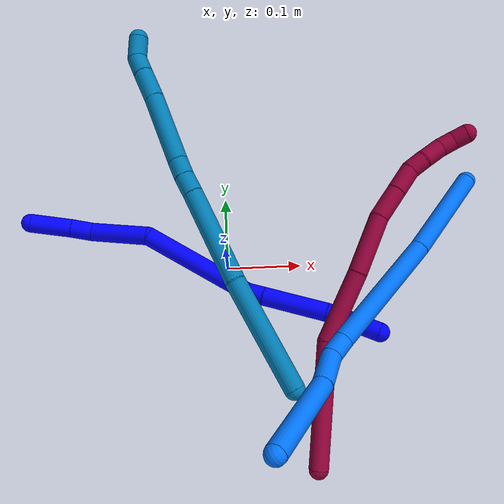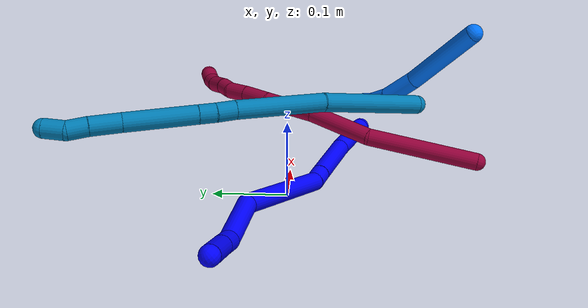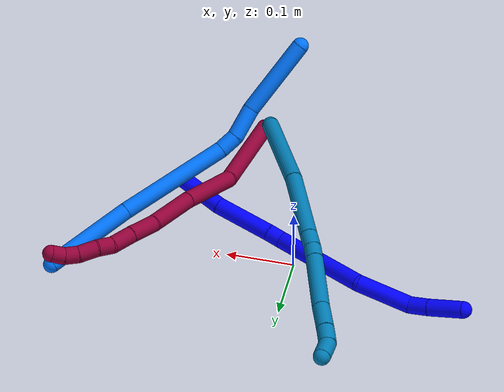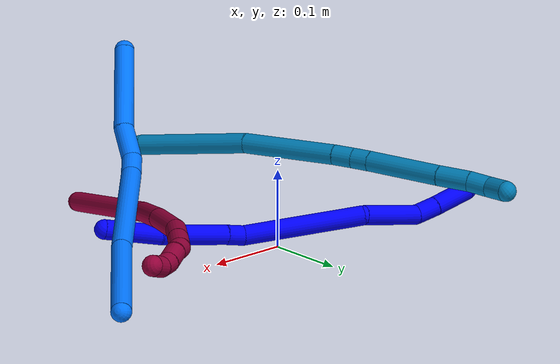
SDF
<sdf version="1.7">
 <world name="default">
  <model name="1">
   <static>0</static>
   <link name="1">
    <collision name="collision-cylinder-e_1_1_4">
     <pose>-0.035044 -0.00153 -0.009193 2.97664 -1.31087 -2.92738</pose>
     <geometry><cylinder><radius>0.0125</radius><length>0.072525</length></cylinder></geometry>
     <surface>
      <friction><ode><mu>1.16</mu><mu2>1.16</mu2><slip1>0</slip1><slip2>0</slip2></ode></friction>
      <contact><ode><kp>1e+06</kp><kd>1</kd><max_vel>0</max_vel><min_depth>0.001</min_depth></ode></contact>
     </surface>
    </collision>
    <visual name="visual-cylinder-e_1_1_4">
     <pose>-0.035044 -0.00153 -0.009193 2.97664 -1.31087 -2.92738</pose>
     <geometry><cylinder><radius>0.0125</radius><length>0.072525</length></cylinder></geometry>
     <material><ambient>0 0 1 1</ambient></material>
    </visual>
    <collision name="collision-cylinder-e_2_4_5">
     <pose>-0.111961 0.001155 -0.02967 -2.784 -1.29071 2.67043</pose>
     <geometry><cylinder><radius>0.0125</radius><length>0.087141</length></cylinder></geometry>
     <surface>
      <friction><ode><mu>1.16</mu><mu2>1.16</mu2><slip1>0</slip1><slip2>0</slip2></ode></friction>
      <contact><ode><kp>1e+06</kp><kd>1</kd><max_vel>0</max_vel><min_depth>0.001</min_depth></ode></contact>
     </surface>
    </collision>
    <visual name="visual-cylinder-e_2_4_5">
     <pose>-0.111961 0.001155 -0.02967 -2.784 -1.29071 2.67043</pose>
     <geometry><cylinder><radius>0.0125</radius><length>0.087141</length></cylinder></geometry>
     <material><ambient>0 0 1 1</ambient></material>
    </visual>
    <collision name="collision-cylinder-e_3_5_6">
     <pose>-0.165104 0.006211 -0.043546 -2.82829 -1.33344 2.74544</pose>
     <geometry><cylinder><radius>0.0125</radius><length>0.02319</length></cylinder></geometry>
     <surface>
      <friction><ode><mu>1.16</mu><mu2>1.16</mu2><slip1>0</slip1><slip2>0</slip2></ode></friction>
      <contact><ode><kp>1e+06</kp><kd>1</kd><max_vel>0</max_vel><min_depth>0.001</min_depth></ode></contact>
     </surface>
    </collision>
    <visual name="visual-cylinder-e_3_5_6">
     <pose>-0.165104 0.006211 -0.043546 -2.82829 -1.33344 2.74544</pose>
     <geometry><cylinder><radius>0.0125</radius><length>0.02319</length></cylinder></geometry>
     <material><ambient>0 0 1 1</ambient></material>
    </visual>
    <collision name="collision-cylinder-e_4_6_7">
     <pose>-0.241044 0.006385 -0.087915 3.12565 -0.997198 -3.11231</pose>
     <geometry><cylinder><radius>0.0125</radius><length>0.153986</length></cylinder></geometry>
     <surface>
      <friction><ode><mu>1.16</mu><mu2>1.16</mu2><slip1>0</slip1><slip2>0</slip2></ode></friction>
      <contact><ode><kp>1e+06</kp><kd>1</kd><max_vel>0</max_vel><min_depth>0.001</min_depth></ode></contact>
     </surface>
    </collision>
    <visual name="visual-cylinder-e_4_6_7">
     <pose>-0.241044 0.006385 -0.087915 3.12565 -0.997198 -3.11231</pose>
     <geometry><cylinder><radius>0.0125</radius><length>0.153986</length></cylinder></geometry>
     <material><ambient>0 0 1 1</ambient></material>
    </visual>
    <collision name="collision-cylinder-e_5_7_8">
     <pose>-0.344613 0.014561 -0.136044 -2.19385 -1.29787 1.95257</pose>
     <geometry><cylinder><radius>0.0125</radius><length>0.080786</length></cylinder></geometry>
     <surface>
      <friction><ode><mu>1.16</mu><mu2>1.16</mu2><slip1>0</slip1><slip2>0</slip2></ode></friction>
      <contact><ode><kp>1e+06</kp><kd>1</kd><max_vel>0</max_vel><min_depth>0.001</min_depth></ode></contact>
     </surface>
    </collision>
    <visual name="visual-cylinder-e_5_7_8">
     <pose>-0.344613 0.014561 -0.136044 -2.19385 -1.29787 1.95257</pose>
     <geometry><cylinder><radius>0.0125</radius><length>0.080786</length></cylinder></geometry>
     <material><ambient>0 0 1 1</ambient></material>
    </visual>
    <collision name="collision-cylinder-e_6_8_9">
     <pose>-0.395558 0.028862 -0.149244 -2.46849 -0.942297 1.93798</pose>
     <geometry><cylinder><radius>0.0125</radius><length>0.029787</length></cylinder></geometry>
     <surface>
      <friction><ode><mu>1.16</mu><mu2>1.16</mu2><slip1>0</slip1><slip2>0</slip2></ode></friction>
      <contact><ode><kp>1e+06</kp><kd>1</kd><max_vel>0</max_vel><min_depth>0.001</min_depth></ode></contact>
     </surface>
    </collision>
    <visual name="visual-cylinder-e_6_8_9">
     <pose>-0.395558 0.028862 -0.149244 -2.46849 -0.942297 1.93798</pose>
     <geometry><cylinder><radius>0.0125</radius><length>0.029787</length></cylinder></geometry>
     <material><ambient>0 0 1 1</ambient></material>
    </visual>
    <collision name="collision-cylinder-e_7_9_2">
     <pose>-0.428262 0.045408 -0.167995 -2.39171 -0.903697 1.77889</pose>
     <geometry><cylinder><radius>0.0125</radius><length>0.052585</length></cylinder></geometry>
     <surface>
      <friction><ode><mu>1.16</mu><mu2>1.16</mu2><slip1>0</slip1><slip2>0</slip2></ode></friction>
      <contact><ode><kp>1e+06</kp><kd>1</kd><max_vel>0</max_vel><min_depth>0.001</min_depth></ode></contact>
     </surface>
    </collision>
    <visual name="visual-cylinder-e_7_9_2">
     <pose>-0.428262 0.045408 -0.167995 -2.39171 -0.903697 1.77889</pose>
     <geometry><cylinder><radius>0.0125</radius><length>0.052585</length></cylinder></geometry>
     <material><ambient>0 0 1 1</ambient></material>
    </visual>
    <collision name="collision-sphere-2">
     <pose>-0.448917 0.056495 -0.179899 0 -0 0</pose>
     <geometry><sphere><radius>0.0125</radius></sphere></geometry>
     <surface>
      <friction><ode><mu>1.16</mu><mu2>1.16</mu2><slip1>0</slip1><slip2>0</slip2></ode></friction>
      <contact><ode><kp>1e+06</kp><kd>1</kd><max_vel>0</max_vel><min_depth>0.001</min_depth></ode></contact>
     </surface>
    </collision>
    <visual name="visual-sphere-2">
     <pose>-0.448917 0.056495 -0.179899 0 -0 0</pose>
     <geometry><sphere><radius>0.0125</radius></sphere></geometry>
     <material><ambient>0 0 1 1</ambient></material>
    </visual>
    <collision name="collision-sphere-9">
     <pose>-0.407606 0.034321 -0.156091 0 -0 0</pose>
     <geometry><sphere><radius>0.0125</radius></sphere></geometry>
     <surface>
      <friction><ode><mu>1.16</mu><mu2>1.16</mu2><slip1>0</slip1><slip2>0</slip2></ode></friction>
      <contact><ode><kp>1e+06</kp><kd>1</kd><max_vel>0</max_vel><min_depth>0.001</min_depth></ode></contact>
     </surface>
    </collision>
    <visual name="visual-sphere-9">
     <pose>-0.407606 0.034321 -0.156091 0 -0 0</pose>
     <geometry><sphere><radius>0.0125</radius></sphere></geometry>
     <material><ambient>0 0 1 1</ambient></material>
    </visual>
    <collision name="collision-sphere-4">
     <pose>-0.070089 -0.003061 -0.018387 0 -0 0</pose>
     <geometry><sphere><radius>0.0125</radius></sphere></geometry>
     <surface>
      <friction><ode><mu>1.16</mu><mu2>1.16</mu2><slip1>0</slip1><slip2>0</slip2></ode></friction>
      <contact><ode><kp>1e+06</kp><kd>1</kd><max_vel>0</max_vel><min_depth>0.001</min_depth></ode></contact>
     </surface>
    </collision>
    <visual name="visual-sphere-4">
     <pose>-0.070089 -0.003061 -0.018387 0 -0 0</pose>
     <geometry><sphere><radius>0.0125</radius></sphere></geometry>
     <material><ambient>0 0 1 1</ambient></material>
    </visual>
    <collision name="collision-sphere-1">
     <geometry><sphere><radius>0.0125</radius></sphere></geometry>
     <surface>
      <friction><ode><mu>1.16</mu><mu2>1.16</mu2><slip1>0</slip1><slip2>0</slip2></ode></friction>
      <contact><ode><kp>1e+06</kp><kd>1</kd><max_vel>0</max_vel><min_depth>0.001</min_depth></ode></contact>
     </surface>
    </collision>
    <visual name="visual-sphere-1">
     <geometry><sphere><radius>0.0125</radius></sphere></geometry>
     <material><ambient>0 0 1 1</ambient></material>
    </visual>
    <collision name="collision-sphere-8">
     <pose>-0.383511 0.023404 -0.142398 0 -0 0</pose>
     <geometry><sphere><radius>0.0125</radius></sphere></geometry>
     <surface>
      <friction><ode><mu>1.16</mu><mu2>1.16</mu2><slip1>0</slip1><slip2>0</slip2></ode></friction>
      <contact><ode><kp>1e+06</kp><kd>1</kd><max_vel>0</max_vel><min_depth>0.001</min_depth></ode></contact>
     </surface>
    </collision>
    <visual name="visual-sphere-8">
     <pose>-0.383511 0.023404 -0.142398 0 -0 0</pose>
     <geometry><sphere><radius>0.0125</radius></sphere></geometry>
     <material><ambient>0 0 1 1</ambient></material>
    </visual>
    <collision name="collision-sphere-5">
     <pose>-0.153833 0.005371 -0.040952 0 -0 0</pose>
     <geometry><sphere><radius>0.0125</radius></sphere></geometry>
     <surface>
      <friction><ode><mu>1.16</mu><mu2>1.16</mu2><slip1>0</slip1><slip2>0</slip2></ode></friction>
      <contact><ode><kp>1e+06</kp><kd>1</kd><max_vel>0</max_vel><min_depth>0.001</min_depth></ode></contact>
     </surface>
    </collision>
    <visual name="visual-sphere-5">
     <pose>-0.153833 0.005371 -0.040952 0 -0 0</pose>
     <geometry><sphere><radius>0.0125</radius></sphere></geometry>
     <material><ambient>0 0 1 1</ambient></material>
    </visual>
    <collision name="collision-sphere-6">
     <pose>-0.176374 0.007052 -0.04614 0 -0 0</pose>
     <geometry><sphere><radius>0.0125</radius></sphere></geometry>
     <surface>
      <friction><ode><mu>1.16</mu><mu2>1.16</mu2><slip1>0</slip1><slip2>0</slip2></ode></friction>
      <contact><ode><kp>1e+06</kp><kd>1</kd><max_vel>0</max_vel><min_depth>0.001</min_depth></ode></contact>
     </surface>
    </collision>
    <visual name="visual-sphere-6">
     <pose>-0.176374 0.007052 -0.04614 0 -0 0</pose>
     <geometry><sphere><radius>0.0125</radius></sphere></geometry>
     <material><ambient>0 0 1 1</ambient></material>
    </visual>
    <collision name="collision-sphere-7">
     <pose>-0.305715 0.005719 -0.129691 0 -0 0</pose>
     <geometry><sphere><radius>0.0125</radius></sphere></geometry>
     <surface>
      <friction><ode><mu>1.16</mu><mu2>1.16</mu2><slip1>0</slip1><slip2>0</slip2></ode></friction>
      <contact><ode><kp>1e+06</kp><kd>1</kd><max_vel>0</max_vel><min_depth>0.001</min_depth></ode></contact>
     </surface>
    </collision>
    <visual name="visual-sphere-7">
     <pose>-0.305715 0.005719 -0.129691 0 -0 0</pose>
     <geometry><sphere><radius>0.0125</radius></sphere></geometry>
     <material><ambient>0 0 1 1</ambient></material>
    </visual>
    <inertial>
     <pose>-0.230773 0.011082 -0.084139 0 -0 0</pose>
     <mass>0.5</mass>
     <inertia>
      <ixx>-0.000211</ixx>
      <ixy>0</ixy>
      <ixz>0</ixz>
      <iyy>0.000488</iyy>
      <iyz>0</iyz>
      <izz>0.000378</izz>
     </inertia>
    </inertial>
   </link>
   <pose>0.1925 -0.102468 0.040972 2.69759 -0.410841 -0.30313</pose>
  </model>
  <model name="8">
   <static>0</static>
   <link name="8">
    <collision name="collision-cylinder-e_1_1_4">
     <pose>0.007077 0.024344 0.074863 -0.314392 0.089652 -0.014219</pose>
     <geometry><cylinder><radius>0.0125</radius><length>0.158078</length></cylinder></geometry>
     <surface>
      <friction><ode><mu>1.16</mu><mu2>1.16</mu2><slip1>0</slip1><slip2>0</slip2></ode></friction>
      <contact><ode><kp>1e+06</kp><kd>1</kd><max_vel>0</max_vel><min_depth>0.001</min_depth></ode></contact>
     </surface>
    </collision>
    <visual name="visual-cylinder-e_1_1_4">
     <pose>0.007077 0.024344 0.074863 -0.314392 0.089652 -0.014219</pose>
     <geometry><cylinder><radius>0.0125</radius><length>0.158078</length></cylinder></geometry>
     <material><ambient>0.584314 0 0.227451 1</ambient></material>
    </visual>
    <collision name="collision-cylinder-e_2_4_5">
     <pose>0.033238 0.068237 0.18861 -0.465853 0.413268 -0.099378</pose>
     <geometry><cylinder><radius>0.0125</radius><length>0.095045</length></cylinder></geometry>
     <surface>
      <friction><ode><mu>1.16</mu><mu2>1.16</mu2><slip1>0</slip1><slip2>0</slip2></ode></friction>
      <contact><ode><kp>1e+06</kp><kd>1</kd><max_vel>0</max_vel><min_depth>0.001</min_depth></ode></contact>
     </surface>
    </collision>
    <visual name="visual-cylinder-e_2_4_5">
     <pose>0.033238 0.068237 0.18861 -0.465853 0.413268 -0.099378</pose>
     <geometry><cylinder><radius>0.0125</radius><length>0.095045</length></cylinder></geometry>
     <material><ambient>0.584314 0 0.227451 1</ambient></material>
    </visual>
    <collision name="collision-cylinder-e_3_5_6">
     <pose>0.064688 0.106033 0.259304 -0.520787 0.325191 -0.087361</pose>
     <geometry><cylinder><radius>0.0125</radius><length>0.0774</length></cylinder></geometry>
     <surface>
      <friction><ode><mu>1.16</mu><mu2>1.16</mu2><slip1>0</slip1><slip2>0</slip2></ode></friction>
      <contact><ode><kp>1e+06</kp><kd>1</kd><max_vel>0</max_vel><min_depth>0.001</min_depth></ode></contact>
     </surface>
    </collision>
    <visual name="visual-cylinder-e_3_5_6">
     <pose>0.064688 0.106033 0.259304 -0.520787 0.325191 -0.087361</pose>
     <geometry><cylinder><radius>0.0125</radius><length>0.0774</length></cylinder></geometry>
     <material><ambient>0.584314 0 0.227451 1</ambient></material>
    </visual>
    <collision name="collision-cylinder-e_4_6_7">
     <pose>0.086446 0.136632 0.305653 -0.704292 0.457572 -0.170721</pose>
     <geometry><cylinder><radius>0.0125</radius><length>0.04253</length></cylinder></geometry>
     <surface>
      <friction><ode><mu>1.16</mu><mu2>1.16</mu2><slip1>0</slip1><slip2>0</slip2></ode></friction>
      <contact><ode><kp>1e+06</kp><kd>1</kd><max_vel>0</max_vel><min_depth>0.001</min_depth></ode></contact>
     </surface>
    </collision>
    <visual name="visual-cylinder-e_4_6_7">
     <pose>0.086446 0.136632 0.305653 -0.704292 0.457572 -0.170721</pose>
     <geometry><cylinder><radius>0.0125</radius><length>0.04253</length></cylinder></geometry>
     <material><ambient>0.584314 0 0.227451 1</ambient></material>
    </visual>
    <collision name="collision-cylinder-e_5_7_8">
     <pose>0.102808 0.159768 0.331574 -0.75838 0.418166 -0.168698</pose>
     <geometry><cylinder><radius>0.0125</radius><length>0.034318</length></cylinder></geometry>
     <surface>
      <friction><ode><mu>1.16</mu><mu2>1.16</mu2><slip1>0</slip1><slip2>0</slip2></ode></friction>
      <contact><ode><kp>1e+06</kp><kd>1</kd><max_vel>0</max_vel><min_depth>0.001</min_depth></ode></contact>
     </surface>
    </collision>
    <visual name="visual-cylinder-e_5_7_8">
     <pose>0.102808 0.159768 0.331574 -0.75838 0.418166 -0.168698</pose>
     <geometry><cylinder><radius>0.0125</radius><length>0.034318</length></cylinder></geometry>
     <material><ambient>0.584314 0 0.227451 1</ambient></material>
    </visual>
    <collision name="collision-cylinder-e_6_8_9">
     <pose>0.117373 0.177361 0.348134 -0.920694 0.726224 -0.372463</pose>
     <geometry><cylinder><radius>0.0125</radius><length>0.02288</length></cylinder></geometry>
     <surface>
      <friction><ode><mu>1.16</mu><mu2>1.16</mu2><slip1>0</slip1><slip2>0</slip2></ode></friction>
      <contact><ode><kp>1e+06</kp><kd>1</kd><max_vel>0</max_vel><min_depth>0.001</min_depth></ode></contact>
     </surface>
    </collision>
    <visual name="visual-cylinder-e_6_8_9">
     <pose>0.117373 0.177361 0.348134 -0.920694 0.726224 -0.372463</pose>
     <geometry><cylinder><radius>0.0125</radius><length>0.02288</length></cylinder></geometry>
     <material><ambient>0.584314 0 0.227451 1</ambient></material>
    </visual>
    <collision name="collision-cylinder-e_7_9_10">
     <pose>0.133153 0.194857 0.358894 -1.0894 0.596296 -0.368141</pose>
     <geometry><cylinder><radius>0.0125</radius><length>0.029145</length></cylinder></geometry>
     <surface>
      <friction><ode><mu>1.16</mu><mu2>1.16</mu2><slip1>0</slip1><slip2>0</slip2></ode></friction>
      <contact><ode><kp>1e+06</kp><kd>1</kd><max_vel>0</max_vel><min_depth>0.001</min_depth></ode></contact>
     </surface>
    </collision>
    <visual name="visual-cylinder-e_7_9_10">
     <pose>0.133153 0.194857 0.358894 -1.0894 0.596296 -0.368141</pose>
     <geometry><cylinder><radius>0.0125</radius><length>0.029145</length></cylinder></geometry>
     <material><ambient>0.584314 0 0.227451 1</ambient></material>
    </visual>
    <collision name="collision-cylinder-e_8_10_11">
     <pose>0.148805 0.211865 0.367686 -1.10103 0.811454 -0.515604</pose>
     <geometry><cylinder><radius>0.0125</radius><length>0.020594</length></cylinder></geometry>
     <surface>
      <friction><ode><mu>1.16</mu><mu2>1.16</mu2><slip1>0</slip1><slip2>0</slip2></ode></friction>
      <contact><ode><kp>1e+06</kp><kd>1</kd><max_vel>0</max_vel><min_depth>0.001</min_depth></ode></contact>
     </surface>
    </collision>
    <visual name="visual-cylinder-e_8_10_11">
     <pose>0.148805 0.211865 0.367686 -1.10103 0.811454 -0.515604</pose>
     <geometry><cylinder><radius>0.0125</radius><length>0.020594</length></cylinder></geometry>
     <material><ambient>0.584314 0 0.227451 1</ambient></material>
    </visual>
    <collision name="collision-cylinder-e_9_11_2">
     <pose>0.165124 0.221649 0.374023 -0.836194 1.08555 -0.523697</pose>
     <geometry><cylinder><radius>0.0125</radius><length>0.02001</length></cylinder></geometry>
     <surface>
      <friction><ode><mu>1.16</mu><mu2>1.16</mu2><slip1>0</slip1><slip2>0</slip2></ode></friction>
      <contact><ode><kp>1e+06</kp><kd>1</kd><max_vel>0</max_vel><min_depth>0.001</min_depth></ode></contact>
     </surface>
    </collision>
    <visual name="visual-cylinder-e_9_11_2">
     <pose>0.165124 0.221649 0.374023 -0.836194 1.08555 -0.523697</pose>
     <geometry><cylinder><radius>0.0125</radius><length>0.02001</length></cylinder></geometry>
     <material><ambient>0.584314 0 0.227451 1</ambient></material>
    </visual>
    <collision name="collision-sphere-2">
     <pose>0.173974 0.225113 0.377151 0 -0 0</pose>
     <geometry><sphere><radius>0.0125</radius></sphere></geometry>
     <surface>
      <friction><ode><mu>1.16</mu><mu2>1.16</mu2><slip1>0</slip1><slip2>0</slip2></ode></friction>
      <contact><ode><kp>1e+06</kp><kd>1</kd><max_vel>0</max_vel><min_depth>0.001</min_depth></ode></contact>
     </surface>
    </collision>
    <visual name="visual-sphere-2">
     <pose>0.173974 0.225113 0.377151 0 -0 0</pose>
     <geometry><sphere><radius>0.0125</radius></sphere></geometry>
     <material><ambient>0.584314 0 0.227451 1</ambient></material>
    </visual>
    <collision name="collision-sphere-11">
     <pose>0.156274 0.218186 0.370895 0 -0 0</pose>
     <geometry><sphere><radius>0.0125</radius></sphere></geometry>
     <surface>
      <friction><ode><mu>1.16</mu><mu2>1.16</mu2><slip1>0</slip1><slip2>0</slip2></ode></friction>
      <contact><ode><kp>1e+06</kp><kd>1</kd><max_vel>0</max_vel><min_depth>0.001</min_depth></ode></contact>
     </surface>
    </collision>
    <visual name="visual-sphere-11">
     <pose>0.156274 0.218186 0.370895 0 -0 0</pose>
     <geometry><sphere><radius>0.0125</radius></sphere></geometry>
     <material><ambient>0.584314 0 0.227451 1</ambient></material>
    </visual>
    <collision name="collision-sphere-10">
     <pose>0.141337 0.205544 0.364477 0 -0 0</pose>
     <geometry><sphere><radius>0.0125</radius></sphere></geometry>
     <surface>
      <friction><ode><mu>1.16</mu><mu2>1.16</mu2><slip1>0</slip1><slip2>0</slip2></ode></friction>
      <contact><ode><kp>1e+06</kp><kd>1</kd><max_vel>0</max_vel><min_depth>0.001</min_depth></ode></contact>
     </surface>
    </collision>
    <visual name="visual-sphere-10">
     <pose>0.141337 0.205544 0.364477 0 -0 0</pose>
     <geometry><sphere><radius>0.0125</radius></sphere></geometry>
     <material><ambient>0.584314 0 0.227451 1</ambient></material>
    </visual>
    <collision name="collision-sphere-9">
     <pose>0.12497 0.18417 0.353312 0 -0 0</pose>
     <geometry><sphere><radius>0.0125</radius></sphere></geometry>
     <surface>
      <friction><ode><mu>1.16</mu><mu2>1.16</mu2><slip1>0</slip1><slip2>0</slip2></ode></friction>
      <contact><ode><kp>1e+06</kp><kd>1</kd><max_vel>0</max_vel><min_depth>0.001</min_depth></ode></contact>
     </surface>
    </collision>
    <visual name="visual-sphere-9">
     <pose>0.12497 0.18417 0.353312 0 -0 0</pose>
     <geometry><sphere><radius>0.0125</radius></sphere></geometry>
     <material><ambient>0.584314 0 0.227451 1</ambient></material>
    </visual>
    <collision name="collision-sphere-4">
     <pose>0.014153 0.048688 0.149726 0 -0 0</pose>
     <geometry><sphere><radius>0.0125</radius></sphere></geometry>
     <surface>
      <friction><ode><mu>1.16</mu><mu2>1.16</mu2><slip1>0</slip1><slip2>0</slip2></ode></friction>
      <contact><ode><kp>1e+06</kp><kd>1</kd><max_vel>0</max_vel><min_depth>0.001</min_depth></ode></contact>
     </surface>
    </collision>
    <visual name="visual-sphere-4">
     <pose>0.014153 0.048688 0.149726 0 -0 0</pose>
     <geometry><sphere><radius>0.0125</radius></sphere></geometry>
     <material><ambient>0.584314 0 0.227451 1</ambient></material>
    </visual>
    <collision name="collision-sphere-1">
     <geometry><sphere><radius>0.0125</radius></sphere></geometry>
     <surface>
      <friction><ode><mu>1.16</mu><mu2>1.16</mu2><slip1>0</slip1><slip2>0</slip2></ode></friction>
      <contact><ode><kp>1e+06</kp><kd>1</kd><max_vel>0</max_vel><min_depth>0.001</min_depth></ode></contact>
     </surface>
    </collision>
    <visual name="visual-sphere-1">
     <geometry><sphere><radius>0.0125</radius></sphere></geometry>
     <material><ambient>0.584314 0 0.227451 1</ambient></material>
    </visual>
    <collision name="collision-sphere-8">
     <pose>0.109776 0.170552 0.342957 0 -0 0</pose>
     <geometry><sphere><radius>0.0125</radius></sphere></geometry>
     <surface>
      <friction><ode><mu>1.16</mu><mu2>1.16</mu2><slip1>0</slip1><slip2>0</slip2></ode></friction>
      <contact><ode><kp>1e+06</kp><kd>1</kd><max_vel>0</max_vel><min_depth>0.001</min_depth></ode></contact>
     </surface>
    </collision>
    <visual name="visual-sphere-8">
     <pose>0.109776 0.170552 0.342957 0 -0 0</pose>
     <geometry><sphere><radius>0.0125</radius></sphere></geometry>
     <material><ambient>0.584314 0 0.227451 1</ambient></material>
    </visual>
    <collision name="collision-sphere-5">
     <pose>0.052324 0.087786 0.227494 0 -0 0</pose>
     <geometry><sphere><radius>0.0125</radius></sphere></geometry>
     <surface>
      <friction><ode><mu>1.16</mu><mu2>1.16</mu2><slip1>0</slip1><slip2>0</slip2></ode></friction>
      <contact><ode><kp>1e+06</kp><kd>1</kd><max_vel>0</max_vel><min_depth>0.001</min_depth></ode></contact>
     </surface>
    </collision>
    <visual name="visual-sphere-5">
     <pose>0.052324 0.087786 0.227494 0 -0 0</pose>
     <geometry><sphere><radius>0.0125</radius></sphere></geometry>
     <material><ambient>0.584314 0 0.227451 1</ambient></material>
    </visual>
    <collision name="collision-sphere-6">
     <pose>0.077052 0.124279 0.291115 0 -0 0</pose>
     <geometry><sphere><radius>0.0125</radius></sphere></geometry>
     <surface>
      <friction><ode><mu>1.16</mu><mu2>1.16</mu2><slip1>0</slip1><slip2>0</slip2></ode></friction>
      <contact><ode><kp>1e+06</kp><kd>1</kd><max_vel>0</max_vel><min_depth>0.001</min_depth></ode></contact>
     </surface>
    </collision>
    <visual name="visual-sphere-6">
     <pose>0.077052 0.124279 0.291115 0 -0 0</pose>
     <geometry><sphere><radius>0.0125</radius></sphere></geometry>
     <material><ambient>0.584314 0 0.227451 1</ambient></material>
    </visual>
    <collision name="collision-sphere-7">
     <pose>0.09584 0.148984 0.320191 0 -0 0</pose>
     <geometry><sphere><radius>0.0125</radius></sphere></geometry>
     <surface>
      <friction><ode><mu>1.16</mu><mu2>1.16</mu2><slip1>0</slip1><slip2>0</slip2></ode></friction>
      <contact><ode><kp>1e+06</kp><kd>1</kd><max_vel>0</max_vel><min_depth>0.001</min_depth></ode></contact>
     </surface>
    </collision>
    <visual name="visual-sphere-7">
     <pose>0.09584 0.148984 0.320191 0 -0 0</pose>
     <geometry><sphere><radius>0.0125</radius></sphere></geometry>
     <material><ambient>0.584314 0 0.227451 1</ambient></material>
    </visual>
    <inertial>
     <pose>0.058848 0.09674 0.215382 0 -0 0</pose>
     <mass>0.5</mass>
     <inertia>
      <ixx>0.000453</ixx>
      <ixy>0</ixy>
      <ixz>0</ixz>
      <iyy>0.000438</iyy>
      <iyz>0</iyz>
      <izz>-0.000221</izz>
     </inertia>
    </inertial>
   </link>
   <pose>0.104012 -0.266051 0.017071 -1.09745 -0.589626 -0.136271</pose>
  </model>
  <model name="9">
   <static>0</static>
   <link name="9">
    <collision name="collision-cylinder-e_1_1_4">
     <pose>-0.026299 0.05845 -0.031258 -2.06188 -0.377722 0.617536</pose>
     <geometry><cylinder><radius>0.0125</radius><length>0.142619</length></cylinder></geometry>
     <surface>
      <friction><ode><mu>1.16</mu><mu2>1.16</mu2><slip1>0</slip1><slip2>0</slip2></ode></friction>
      <contact><ode><kp>1e+06</kp><kd>1</kd><max_vel>0</max_vel><min_depth>0.001</min_depth></ode></contact>
     </surface>
    </collision>
    <visual name="visual-cylinder-e_1_1_4">
     <pose>-0.026299 0.05845 -0.031258 -2.06188 -0.377722 0.617536</pose>
     <geometry><cylinder><radius>0.0125</radius><length>0.142619</length></cylinder></geometry>
     <material><ambient>0 0.490196 0.709804 1</ambient></material>
    </visual>
    <collision name="collision-cylinder-e_2_4_5">
     <pose>-0.06802 0.166067 -0.093428 -2.13208 -0.259537 0.463905</pose>
     <geometry><cylinder><radius>0.0125</radius><length>0.120181</length></cylinder></geometry>
     <surface>
      <friction><ode><mu>1.16</mu><mu2>1.16</mu2><slip1>0</slip1><slip2>0</slip2></ode></friction>
      <contact><ode><kp>1e+06</kp><kd>1</kd><max_vel>0</max_vel><min_depth>0.001</min_depth></ode></contact>
     </surface>
    </collision>
    <visual name="visual-cylinder-e_2_4_5">
     <pose>-0.06802 0.166067 -0.093428 -2.13208 -0.259537 0.463905</pose>
     <geometry><cylinder><radius>0.0125</radius><length>0.120181</length></cylinder></geometry>
     <material><ambient>0 0.490196 0.709804 1</ambient></material>
    </visual>
    <collision name="collision-cylinder-e_3_5_6">
     <pose>-0.086614 0.225217 -0.131477 -2.19141 -0.253019 0.484799</pose>
     <geometry><cylinder><radius>0.0125</radius><length>0.025347</length></cylinder></geometry>
     <surface>
      <friction><ode><mu>1.16</mu><mu2>1.16</mu2><slip1>0</slip1><slip2>0</slip2></ode></friction>
      <contact><ode><kp>1e+06</kp><kd>1</kd><max_vel>0</max_vel><min_depth>0.001</min_depth></ode></contact>
     </surface>
    </collision>
    <visual name="visual-cylinder-e_3_5_6">
     <pose>-0.086614 0.225217 -0.131477 -2.19141 -0.253019 0.484799</pose>
     <geometry><cylinder><radius>0.0125</radius><length>0.025347</length></cylinder></geometry>
     <material><ambient>0 0.490196 0.709804 1</ambient></material>
    </visual>
    <collision name="collision-cylinder-e_4_6_7">
     <pose>-0.09192 0.244534 -0.144421 -2.1274 -0.191663 0.342663</pose>
     <geometry><cylinder><radius>0.0125</radius><length>0.022401</length></cylinder></geometry>
     <surface>
      <friction><ode><mu>1.16</mu><mu2>1.16</mu2><slip1>0</slip1><slip2>0</slip2></ode></friction>
      <contact><ode><kp>1e+06</kp><kd>1</kd><max_vel>0</max_vel><min_depth>0.001</min_depth></ode></contact>
     </surface>
    </collision>
    <visual name="visual-cylinder-e_4_6_7">
     <pose>-0.09192 0.244534 -0.144421 -2.1274 -0.191663 0.342663</pose>
     <geometry><cylinder><radius>0.0125</radius><length>0.022401</length></cylinder></geometry>
     <material><ambient>0 0.490196 0.709804 1</ambient></material>
    </visual>
    <collision name="collision-cylinder-e_5_7_8">
     <pose>-0.101824 0.293376 -0.174616 -2.12381 -0.165834 0.295752</pose>
     <geometry><cylinder><radius>0.0125</radius><length>0.094144</length></cylinder></geometry>
     <surface>
      <friction><ode><mu>1.16</mu><mu2>1.16</mu2><slip1>0</slip1><slip2>0</slip2></ode></friction>
      <contact><ode><kp>1e+06</kp><kd>1</kd><max_vel>0</max_vel><min_depth>0.001</min_depth></ode></contact>
     </surface>
    </collision>
    <visual name="visual-cylinder-e_5_7_8">
     <pose>-0.101824 0.293376 -0.174616 -2.12381 -0.165834 0.295752</pose>
     <geometry><cylinder><radius>0.0125</radius><length>0.094144</length></cylinder></geometry>
     <material><ambient>0 0.490196 0.709804 1</ambient></material>
    </visual>
    <collision name="collision-cylinder-e_6_8_9">
     <pose>-0.11372 0.349475 -0.209782 -2.14698 -0.205566 0.375571</pose>
     <geometry><cylinder><radius>0.0125</radius><length>0.040425</length></cylinder></geometry>
     <surface>
      <friction><ode><mu>1.16</mu><mu2>1.16</mu2><slip1>0</slip1><slip2>0</slip2></ode></friction>
      <contact><ode><kp>1e+06</kp><kd>1</kd><max_vel>0</max_vel><min_depth>0.001</min_depth></ode></contact>
     </surface>
    </collision>
    <visual name="visual-cylinder-e_6_8_9">
     <pose>-0.11372 0.349475 -0.209782 -2.14698 -0.205566 0.375571</pose>
     <geometry><cylinder><radius>0.0125</radius><length>0.040425</length></cylinder></geometry>
     <material><ambient>0 0.490196 0.709804 1</ambient></material>
    </visual>
    <collision name="collision-cylinder-e_7_9_10">
     <pose>-0.119752 0.376461 -0.228241 -2.20707 -0.146423 0.288716</pose>
     <geometry><cylinder><radius>0.0125</radius><length>0.026125</length></cylinder></geometry>
     <surface>
      <friction><ode><mu>1.16</mu><mu2>1.16</mu2><slip1>0</slip1><slip2>0</slip2></ode></friction>
      <contact><ode><kp>1e+06</kp><kd>1</kd><max_vel>0</max_vel><min_depth>0.001</min_depth></ode></contact>
     </surface>
    </collision>
    <visual name="visual-cylinder-e_7_9_10">
     <pose>-0.119752 0.376461 -0.228241 -2.20707 -0.146423 0.288716</pose>
     <geometry><cylinder><radius>0.0125</radius><length>0.026125</length></cylinder></geometry>
     <material><ambient>0 0.490196 0.709804 1</ambient></material>
    </visual>
    <collision name="collision-cylinder-e_8_10_2">
     <pose>-0.120183 0.400681 -0.239583 -1.82981 0.102701 -0.133376</pose>
     <geometry><cylinder><radius>0.0125</radius><length>0.028757</length></cylinder></geometry>
     <surface>
      <friction><ode><mu>1.16</mu><mu2>1.16</mu2><slip1>0</slip1><slip2>0</slip2></ode></friction>
      <contact><ode><kp>1e+06</kp><kd>1</kd><max_vel>0</max_vel><min_depth>0.001</min_depth></ode></contact>
     </surface>
    </collision>
    <visual name="visual-cylinder-e_8_10_2">
     <pose>-0.120183 0.400681 -0.239583 -1.82981 0.102701 -0.133376</pose>
     <geometry><cylinder><radius>0.0125</radius><length>0.028757</length></cylinder></geometry>
     <material><ambient>0 0.490196 0.709804 1</ambient></material>
    </visual>
    <collision name="collision-sphere-2">
     <pose>-0.118709 0.414506 -0.243246 0 -0 0</pose>
     <geometry><sphere><radius>0.0125</radius></sphere></geometry>
     <surface>
      <friction><ode><mu>1.16</mu><mu2>1.16</mu2><slip1>0</slip1><slip2>0</slip2></ode></friction>
      <contact><ode><kp>1e+06</kp><kd>1</kd><max_vel>0</max_vel><min_depth>0.001</min_depth></ode></contact>
     </surface>
    </collision>
    <visual name="visual-sphere-2">
     <pose>-0.118709 0.414506 -0.243246 0 -0 0</pose>
     <geometry><sphere><radius>0.0125</radius></sphere></geometry>
     <material><ambient>0 0.490196 0.709804 1</ambient></material>
    </visual>
    <collision name="collision-sphere-10">
     <pose>-0.121657 0.386855 -0.23592 0 -0 0</pose>
     <geometry><sphere><radius>0.0125</radius></sphere></geometry>
     <surface>
      <friction><ode><mu>1.16</mu><mu2>1.16</mu2><slip1>0</slip1><slip2>0</slip2></ode></friction>
      <contact><ode><kp>1e+06</kp><kd>1</kd><max_vel>0</max_vel><min_depth>0.001</min_depth></ode></contact>
     </surface>
    </collision>
    <visual name="visual-sphere-10">
     <pose>-0.121657 0.386855 -0.23592 0 -0 0</pose>
     <geometry><sphere><radius>0.0125</radius></sphere></geometry>
     <material><ambient>0 0.490196 0.709804 1</ambient></material>
    </visual>
    <collision name="collision-sphere-9">
     <pose>-0.117846 0.366067 -0.220562 0 -0 0</pose>
     <geometry><sphere><radius>0.0125</radius></sphere></geometry>
     <surface>
      <friction><ode><mu>1.16</mu><mu2>1.16</mu2><slip1>0</slip1><slip2>0</slip2></ode></friction>
      <contact><ode><kp>1e+06</kp><kd>1</kd><max_vel>0</max_vel><min_depth>0.001</min_depth></ode></contact>
     </surface>
    </collision>
    <visual name="visual-sphere-9">
     <pose>-0.117846 0.366067 -0.220562 0 -0 0</pose>
     <geometry><sphere><radius>0.0125</radius></sphere></geometry>
     <material><ambient>0 0.490196 0.709804 1</ambient></material>
    </visual>
    <collision name="collision-sphere-4">
     <pose>-0.052599 0.1169 -0.062515 0 -0 0</pose>
     <geometry><sphere><radius>0.0125</radius></sphere></geometry>
     <surface>
      <friction><ode><mu>1.16</mu><mu2>1.16</mu2><slip1>0</slip1><slip2>0</slip2></ode></friction>
      <contact><ode><kp>1e+06</kp><kd>1</kd><max_vel>0</max_vel><min_depth>0.001</min_depth></ode></contact>
     </surface>
    </collision>
    <visual name="visual-sphere-4">
     <pose>-0.052599 0.1169 -0.062515 0 -0 0</pose>
     <geometry><sphere><radius>0.0125</radius></sphere></geometry>
     <material><ambient>0 0.490196 0.709804 1</ambient></material>
    </visual>
    <collision name="collision-sphere-1">
     <geometry><sphere><radius>0.0125</radius></sphere></geometry>
     <surface>
      <friction><ode><mu>1.16</mu><mu2>1.16</mu2><slip1>0</slip1><slip2>0</slip2></ode></friction>
      <contact><ode><kp>1e+06</kp><kd>1</kd><max_vel>0</max_vel><min_depth>0.001</min_depth></ode></contact>
     </surface>
    </collision>
    <visual name="visual-sphere-1">
     <geometry><sphere><radius>0.0125</radius></sphere></geometry>
     <material><ambient>0 0.490196 0.709804 1</ambient></material>
    </visual>
    <collision name="collision-sphere-8">
     <pose>-0.109594 0.332882 -0.199001 0 -0 0</pose>
     <geometry><sphere><radius>0.0125</radius></sphere></geometry>
     <surface>
      <friction><ode><mu>1.16</mu><mu2>1.16</mu2><slip1>0</slip1><slip2>0</slip2></ode></friction>
      <contact><ode><kp>1e+06</kp><kd>1</kd><max_vel>0</max_vel><min_depth>0.001</min_depth></ode></contact>
     </surface>
    </collision>
    <visual name="visual-sphere-8">
     <pose>-0.109594 0.332882 -0.199001 0 -0 0</pose>
     <geometry><sphere><radius>0.0125</radius></sphere></geometry>
     <material><ambient>0 0.490196 0.709804 1</ambient></material>
    </visual>
    <collision name="collision-sphere-5">
     <pose>-0.083441 0.215235 -0.124342 0 -0 0</pose>
     <geometry><sphere><radius>0.0125</radius></sphere></geometry>
     <surface>
      <friction><ode><mu>1.16</mu><mu2>1.16</mu2><slip1>0</slip1><slip2>0</slip2></ode></friction>
      <contact><ode><kp>1e+06</kp><kd>1</kd><max_vel>0</max_vel><min_depth>0.001</min_depth></ode></contact>
     </surface>
    </collision>
    <visual name="visual-sphere-5">
     <pose>-0.083441 0.215235 -0.124342 0 -0 0</pose>
     <geometry><sphere><radius>0.0125</radius></sphere></geometry>
     <material><ambient>0 0.490196 0.709804 1</ambient></material>
    </visual>
    <collision name="collision-sphere-6">
     <pose>-0.089786 0.235199 -0.138612 0 -0 0</pose>
     <geometry><sphere><radius>0.0125</radius></sphere></geometry>
     <surface>
      <friction><ode><mu>1.16</mu><mu2>1.16</mu2><slip1>0</slip1><slip2>0</slip2></ode></friction>
      <contact><ode><kp>1e+06</kp><kd>1</kd><max_vel>0</max_vel><min_depth>0.001</min_depth></ode></contact>
     </surface>
    </collision>
    <visual name="visual-sphere-6">
     <pose>-0.089786 0.235199 -0.138612 0 -0 0</pose>
     <geometry><sphere><radius>0.0125</radius></sphere></geometry>
     <material><ambient>0 0.490196 0.709804 1</ambient></material>
    </visual>
    <collision name="collision-sphere-7">
     <pose>-0.094053 0.25387 -0.15023 0 -0 0</pose>
     <geometry><sphere><radius>0.0125</radius></sphere></geometry>
     <surface>
      <friction><ode><mu>1.16</mu><mu2>1.16</mu2><slip1>0</slip1><slip2>0</slip2></ode></friction>
      <contact><ode><kp>1e+06</kp><kd>1</kd><max_vel>0</max_vel><min_depth>0.001</min_depth></ode></contact>
     </surface>
    </collision>
    <visual name="visual-sphere-7">
     <pose>-0.094053 0.25387 -0.15023 0 -0 0</pose>
     <geometry><sphere><radius>0.0125</radius></sphere></geometry>
     <material><ambient>0 0.490196 0.709804 1</ambient></material>
    </visual>
    <inertial>
     <pose>-0.073896 0.205171 -0.120052 0 -0 0</pose>
     <mass>0.5</mass>
     <inertia>
      <ixx>0.000615</ixx>
      <ixy>0</ixy>
      <ixz>0</ixz>
      <iyy>0.00011</iyy>
      <iyz>0</iyz>
      <izz>-0.000275</izz>
     </inertia>
    </inertial>
   </link>
   <pose>0.074221 -0.173273 0.108402 0.405097 0.553433 0.097374</pose>
  </model>
  <model name="14">
   <static>0</static>
   <link name="14">
    <collision name="collision-cylinder-e_1_1_4">
     <pose>0.053012 0.007334 0.024675 -0.288917 1.11874 -0.181651</pose>
     <geometry><cylinder><radius>0.0125</radius><length>0.117864</length></cylinder></geometry>
     <surface>
      <friction><ode><mu>1.16</mu><mu2>1.16</mu2><slip1>0</slip1><slip2>0</slip2></ode></friction>
      <contact><ode><kp>1e+06</kp><kd>1</kd><max_vel>0</max_vel><min_depth>0.001</min_depth></ode></contact>
     </surface>
    </collision>
    <visual name="visual-cylinder-e_1_1_4">
     <pose>0.053012 0.007334 0.024675 -0.288917 1.11874 -0.181651</pose>
     <geometry><cylinder><radius>0.0125</radius><length>0.117864</length></cylinder></geometry>
     <material><ambient>0 0.462745 1 1</ambient></material>
    </visual>
    <collision name="collision-cylinder-e_2_4_5">
     <pose>0.126374 0.02275 0.05831 -0.733906 1.0356 -0.431097</pose>
     <geometry><cylinder><radius>0.0125</radius><length>0.047314</length></cylinder></geometry>
     <surface>
      <friction><ode><mu>1.16</mu><mu2>1.16</mu2><slip1>0</slip1><slip2>0</slip2></ode></friction>
      <contact><ode><kp>1e+06</kp><kd>1</kd><max_vel>0</max_vel><min_depth>0.001</min_depth></ode></contact>
     </surface>
    </collision>
    <visual name="visual-cylinder-e_2_4_5">
     <pose>0.126374 0.02275 0.05831 -0.733906 1.0356 -0.431097</pose>
     <geometry><cylinder><radius>0.0125</radius><length>0.047314</length></cylinder></geometry>
     <material><ambient>0 0.462745 1 1</ambient></material>
    </visual>
    <collision name="collision-cylinder-e_3_5_6">
     <pose>0.157441 0.033329 0.076441 -0.265909 0.845316 -0.120161</pose>
     <geometry><cylinder><radius>0.0125</radius><length>0.028653</length></cylinder></geometry>
     <surface>
      <friction><ode><mu>1.16</mu><mu2>1.16</mu2><slip1>0</slip1><slip2>0</slip2></ode></friction>
      <contact><ode><kp>1e+06</kp><kd>1</kd><max_vel>0</max_vel><min_depth>0.001</min_depth></ode></contact>
     </surface>
    </collision>
    <visual name="visual-cylinder-e_3_5_6">
     <pose>0.157441 0.033329 0.076441 -0.265909 0.845316 -0.120161</pose>
     <geometry><cylinder><radius>0.0125</radius><length>0.028653</length></cylinder></geometry>
     <material><ambient>0 0.462745 1 1</ambient></material>
    </visual>
    <collision name="collision-cylinder-e_4_6_7">
     <pose>0.218726 0.051667 0.151955 -0.234382 0.637946 -0.077722</pose>
     <geometry><cylinder><radius>0.0125</radius><length>0.169813</length></cylinder></geometry>
     <surface>
      <friction><ode><mu>1.16</mu><mu2>1.16</mu2><slip1>0</slip1><slip2>0</slip2></ode></friction>
      <contact><ode><kp>1e+06</kp><kd>1</kd><max_vel>0</max_vel><min_depth>0.001</min_depth></ode></contact>
     </surface>
    </collision>
    <visual name="visual-cylinder-e_4_6_7">
     <pose>0.218726 0.051667 0.151955 -0.234382 0.637946 -0.077722</pose>
     <geometry><cylinder><radius>0.0125</radius><length>0.169813</length></cylinder></geometry>
     <material><ambient>0 0.462745 1 1</ambient></material>
    </visual>
    <collision name="collision-cylinder-e_5_7_2">
     <pose>0.310006 0.084572 0.270253 -0.317332 0.639976 -0.105948</pose>
     <geometry><cylinder><radius>0.0125</radius><length>0.136356</length></cylinder></geometry>
     <surface>
      <friction><ode><mu>1.16</mu><mu2>1.16</mu2><slip1>0</slip1><slip2>0</slip2></ode></friction>
      <contact><ode><kp>1e+06</kp><kd>1</kd><max_vel>0</max_vel><min_depth>0.001</min_depth></ode></contact>
     </surface>
    </collision>
    <visual name="visual-cylinder-e_5_7_2">
     <pose>0.310006 0.084572 0.270253 -0.317332 0.639976 -0.105948</pose>
     <geometry><cylinder><radius>0.0125</radius><length>0.136356</length></cylinder></geometry>
     <material><ambient>0 0.462745 1 1</ambient></material>
    </visual>
    <collision name="collision-sphere-2">
     <pose>0.35072 0.101636 0.322209 0 -0 0</pose>
     <geometry><sphere><radius>0.0125</radius></sphere></geometry>
     <surface>
      <friction><ode><mu>1.16</mu><mu2>1.16</mu2><slip1>0</slip1><slip2>0</slip2></ode></friction>
      <contact><ode><kp>1e+06</kp><kd>1</kd><max_vel>0</max_vel><min_depth>0.001</min_depth></ode></contact>
     </surface>
    </collision>
    <visual name="visual-sphere-2">
     <pose>0.35072 0.101636 0.322209 0 -0 0</pose>
     <geometry><sphere><radius>0.0125</radius></sphere></geometry>
     <material><ambient>0 0.462745 1 1</ambient></material>
    </visual>
    <collision name="collision-sphere-7">
     <pose>0.269292 0.067508 0.218297 0 -0 0</pose>
     <geometry><sphere><radius>0.0125</radius></sphere></geometry>
     <surface>
      <friction><ode><mu>1.16</mu><mu2>1.16</mu2><slip1>0</slip1><slip2>0</slip2></ode></friction>
      <contact><ode><kp>1e+06</kp><kd>1</kd><max_vel>0</max_vel><min_depth>0.001</min_depth></ode></contact>
     </surface>
    </collision>
    <visual name="visual-sphere-7">
     <pose>0.269292 0.067508 0.218297 0 -0 0</pose>
     <geometry><sphere><radius>0.0125</radius></sphere></geometry>
     <material><ambient>0 0.462745 1 1</ambient></material>
    </visual>
    <collision name="collision-sphere-6">
     <pose>0.16816 0.035827 0.085612 0 -0 0</pose>
     <geometry><sphere><radius>0.0125</radius></sphere></geometry>
     <surface>
      <friction><ode><mu>1.16</mu><mu2>1.16</mu2><slip1>0</slip1><slip2>0</slip2></ode></friction>
      <contact><ode><kp>1e+06</kp><kd>1</kd><max_vel>0</max_vel><min_depth>0.001</min_depth></ode></contact>
     </surface>
    </collision>
    <visual name="visual-sphere-6">
     <pose>0.16816 0.035827 0.085612 0 -0 0</pose>
     <geometry><sphere><radius>0.0125</radius></sphere></geometry>
     <material><ambient>0 0.462745 1 1</ambient></material>
    </visual>
    <collision name="collision-sphere-5">
     <pose>0.146722 0.030831 0.067269 0 -0 0</pose>
     <geometry><sphere><radius>0.0125</radius></sphere></geometry>
     <surface>
      <friction><ode><mu>1.16</mu><mu2>1.16</mu2><slip1>0</slip1><slip2>0</slip2></ode></friction>
      <contact><ode><kp>1e+06</kp><kd>1</kd><max_vel>0</max_vel><min_depth>0.001</min_depth></ode></contact>
     </surface>
    </collision>
    <visual name="visual-sphere-5">
     <pose>0.146722 0.030831 0.067269 0 -0 0</pose>
     <geometry><sphere><radius>0.0125</radius></sphere></geometry>
     <material><ambient>0 0.462745 1 1</ambient></material>
    </visual>
    <collision name="collision-sphere-1">
     <geometry><sphere><radius>0.0125</radius></sphere></geometry>
     <surface>
      <friction><ode><mu>1.16</mu><mu2>1.16</mu2><slip1>0</slip1><slip2>0</slip2></ode></friction>
      <contact><ode><kp>1e+06</kp><kd>1</kd><max_vel>0</max_vel><min_depth>0.001</min_depth></ode></contact>
     </surface>
    </collision>
    <visual name="visual-sphere-1">
     <geometry><sphere><radius>0.0125</radius></sphere></geometry>
     <material><ambient>0 0.462745 1 1</ambient></material>
    </visual>
    <collision name="collision-sphere-4">
     <pose>0.106025 0.014669 0.049351 0 -0 0</pose>
     <geometry><sphere><radius>0.0125</radius></sphere></geometry>
     <surface>
      <friction><ode><mu>1.16</mu><mu2>1.16</mu2><slip1>0</slip1><slip2>0</slip2></ode></friction>
      <contact><ode><kp>1e+06</kp><kd>1</kd><max_vel>0</max_vel><min_depth>0.001</min_depth></ode></contact>
     </surface>
    </collision>
    <visual name="visual-sphere-4">
     <pose>0.106025 0.014669 0.049351 0 -0 0</pose>
     <geometry><sphere><radius>0.0125</radius></sphere></geometry>
     <material><ambient>0 0.462745 1 1</ambient></material>
    </visual>
    <inertial>
     <pose>0.192305 0.046403 0.141024 0 -0 0</pose>
     <mass>0.5</mass>
     <inertia>
      <ixx>0.000542</ixx>
      <ixy>0</ixy>
      <ixz>0</ixz>
      <iyy>0.000718</iyy>
      <iyz>0</iyz>
      <izz>-0.000643</izz>
     </inertia>
    </inertial>
   </link>
   <pose>0.045088 -0.239494 0.212513 0.318444 1.15822 0.879319</pose>
  </model>
 </world>
</sdf>
